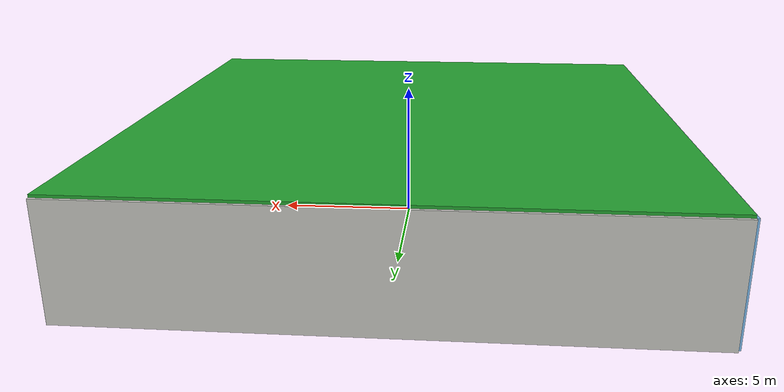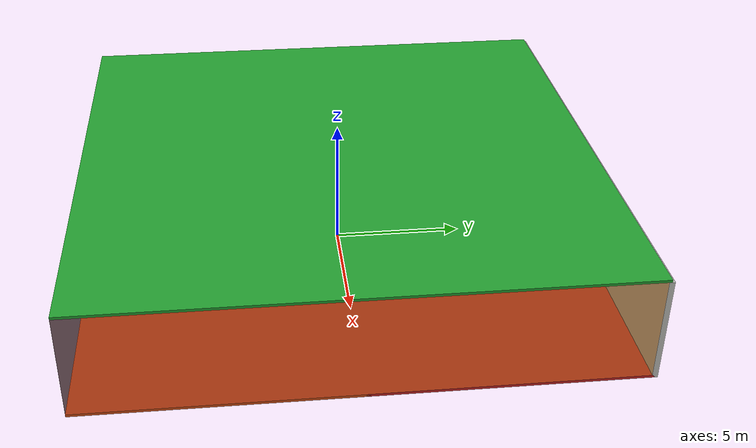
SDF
<sdf version="1.4">
 <world name="default">
  <physics type="ode">
   <max_step_size>0.001</max_step_size>
   <real_time_factor>1</real_time_factor>
   <real_time_update_rate>1000</real_time_update_rate>
   <gravity>0 0 -9.8</gravity>
  </physics>
  <scene><ambient>0.4 0.4 0.4 1</ambient><background>0.7 0.7 0.7 1</background><shadows>1</shadows></scene>
  <model name="Surrounding">
   <static>1</static>
   <link name="Ceiling">
    <collision name="Ceiling_Collision"><geometry><box><size>20 20 0.1</size></box></geometry></collision>
    <visual name="Ceiling_Visual">
     <geometry><box><size>20 20 0.1</size></box></geometry>
     <material>
      <script><uri>file://media/materials/scripts/gazebo.material</uri><name>Gazebo/Green</name></script>
     </material>
    </visual>
    <pose>0 0 4.05 0 0 0</pose>
   </link>
   <link name="Wall_South">
    <collision name="Wall_South_Collision">
     <geometry><box><size>20 0 4</size></box></geometry>
     <pose>0 0 2 0 -0 0</pose>
    </collision>
    <visual name="Wall_South_Visual">
     <pose>0 0 2 0 -0 0</pose>
     <geometry><box><size>20 0 4</size></box></geometry>
     <material>
      <script><uri>file://media/materials/scripts/gazebo.material</uri><name>Gazebo/Blue</name></script>
     </material>
    </visual>
    <velocity_decay><linear>0</linear><angular>0</angular></velocity_decay>
    <pose>0 -10 0 0 -0 0</pose>
   </link>
   <link name="Wall_East">
    <collision name="Wall_21_Collision">
     <geometry><box><size>20 0 4</size></box></geometry>
     <pose>0 0 2 0 -0 0</pose>
    </collision>
    <visual name="Wall_21_Visual">
     <pose>0 0 2 0 -0 0</pose>
     <geometry><box><size>20 0 4</size></box></geometry>
     <material>
      <script>
       <uri>file://media/materials/scripts/gazebo.material</uri>
       <name>Gazebo/OrangeTransparent</name>
      </script>
     </material>
    </visual>
    <velocity_decay><linear>0</linear><angular>0</angular></velocity_decay>
    <pose>10 0 0 0 -0 1.5708</pose>
   </link>
   <link name="Wall_North">
    <collision name="Wall_22_Collision">
     <geometry><box><size>20 0.2 4</size></box></geometry>
     <pose>0 0 2 0 -0 0</pose>
    </collision>
    <visual name="Wall_22_Visual">
     <pose>0 0 2 0 -0 0</pose>
     <geometry><box><size>20 0.2 4</size></box></geometry>
     <material>
      <script><uri>file://media/materials/scripts/gazebo.material</uri><name>Gazebo/CeilingTiled</name></script>
     </material>
    </visual>
    <velocity_decay><linear>0</linear><angular>0</angular></velocity_decay>
    <pose>0 10 0 0 -0 0</pose>
   </link>
   <link name="Wall_West">
    <collision name="Wall_23_Collision">
     <geometry><box><size>20 0.2 4</size></box></geometry>
     <pose>0 0 2 0 -0 0</pose>
    </collision>
    <visual name="Wall_23_Visual">
     <pose>0 0 2 0 -0 0</pose>
     <geometry><box><size>20 0.2 4</size></box></geometry>
     <material>
      <script><uri>file://media/materials/scripts/gazebo.material</uri><name>Gazebo/SkyBlue</name></script>
     </material>
    </visual>
    <velocity_decay><linear>0</linear><angular>0</angular></velocity_decay>
    <pose>-10 0 0 0 0 -1.5708</pose>
   </link>
   <link name="Ground_link">
    <collision name="collision">
     <pose>0 0 .05 0 -0 0</pose>
     <geometry><box><size>20 20 0.1</size></box></geometry>
    </collision>
    <visual name="visual">
     <pose>0 0 .05 0 -0 0</pose>
     <geometry><box><size>20 20 0.1</size></box></geometry>
     <material>
      <script><uri>file://media/materials/scripts/gazebo.material</uri><name>Gazebo/RedGlow</name></script>
     </material>
    </visual>
   </link>
   <static>1</static>
  </model>
  <spherical_coordinates>
   <surface_model>EARTH_WGS84</surface_model>
   <latitude_deg>0</latitude_deg>
   <longitude_deg>0</longitude_deg>
   <elevation>0</elevation>
   <heading_deg>0</heading_deg>
  </spherical_coordinates>
  <light name="lightball_0" type="diffuse">
   <diffuse>0.8 0.8 0.8 1</diffuse>
   <specular>0.2 0.2 0.2 1</specular>
   <attenuation>
    <range>100</range>
    <constant>0.7</constant>
    <linear>0.01</linear>
    <quadratic>0.001</quadratic>
   </attenuation>
   <direction>-0.5 0.1 -0.9</direction>
   <pose>-7.0764256402 -3.20971318174 1.54507175521 0 0 0</pose>
  </light>
  <light name="lightball_1" type="diffuse">
   <diffuse>0.8 0.8 0.8 1</diffuse>
   <specular>0.2 0.2 0.2 1</specular>
   <attenuation>
    <range>100</range>
    <constant>0.7</constant>
    <linear>0.01</linear>
    <quadratic>0.001</quadratic>
   </attenuation>
   <direction>-0.5 0.1 -0.9</direction>
   <pose>-0.202286096713 -2.85831160833 0.688724161555 0 0 0</pose>
  </light>
  <light name="lightball_2" type="diffuse">
   <diffuse>0.8 0.8 0.8 1</diffuse>
   <specular>0.2 0.2 0.2 1</specular>
   <attenuation>
    <range>100</range>
    <constant>0.7</constant>
    <linear>0.01</linear>
    <quadratic>0.001</quadratic>
   </attenuation>
   <direction>-0.5 0.1 -0.9</direction>
   <pose>-9.10182425024 -6.5471592989 2.17706429671 0 0 0</pose>
  </light>
  <light name="lightball_3" type="diffuse">
   <diffuse>0.8 0.8 0.8 1</diffuse>
   <specular>0.2 0.2 0.2 1</specular>
   <attenuation>
    <range>100</range>
    <constant>0.7</constant>
    <linear>0.01</linear>
    <quadratic>0.001</quadratic>
   </attenuation>
   <direction>-0.5 0.1 -0.9</direction>
   <pose>6.88952368048 5.74309942994 2.27389598831 0 0 0</pose>
  </light>
  <light name="lightball_4" type="diffuse">
   <diffuse>0.8 0.8 0.8 1</diffuse>
   <specular>0.2 0.2 0.2 1</specular>
   <attenuation>
    <range>100</range>
    <constant>0.7</constant>
    <linear>0.01</linear>
    <quadratic>0.001</quadratic>
   </attenuation>
   <direction>-0.5 0.1 -0.9</direction>
   <pose>-7.63125715605 1.3417998742 1.22772312103 0 0 0</pose>
  </light>
  <light name="lightball_5" type="diffuse">
   <diffuse>0.8 0.8 0.8 1</diffuse>
   <specular>0.2 0.2 0.2 1</specular>
   <attenuation>
    <range>100</range>
    <constant>0.7</constant>
    <linear>0.01</linear>
    <quadratic>0.001</quadratic>
   </attenuation>
   <direction>-0.5 0.1 -0.9</direction>
   <pose>6.37448903723 -6.7864120363 3.67482735207 0 0 0</pose>
  </light>
  <light name="lightball_6" type="diffuse">
   <diffuse>0.8 0.8 0.8 1</diffuse>
   <specular>0.2 0.2 0.2 1</specular>
   <attenuation>
    <range>100</range>
    <constant>0.7</constant>
    <linear>0.01</linear>
    <quadratic>0.001</quadratic>
   </attenuation>
   <direction>-0.5 0.1 -0.9</direction>
   <pose>4.41541617149 3.5621604788 2.81449942579 0 0 0</pose>
  </light>
  <light name="lightball_7" type="diffuse">
   <diffuse>0.8 0.8 0.8 1</diffuse>
   <specular>0.2 0.2 0.2 1</specular>
   <attenuation>
    <range>100</range>
    <constant>0.7</constant>
    <linear>0.01</linear>
    <quadratic>0.001</quadratic>
   </attenuation>
   <direction>-0.5 0.1 -0.9</direction>
   <pose>4.45707746689 3.03650009451 1.38202571579 0 0 0</pose>
  </light>
  <include><uri>model://cabinet</uri><pose>-6.9875482147 7.79971402423 0 0 0 0.256281233732</pose></include>
  <include><uri>model://cabinet</uri><pose>-4.36396404203 -4.14275864071 0 0 0 2.06792761827</pose></include>
  <include>
   <uri>model://construction_cone</uri>
   <pose>-0.723306996808 -8.01295739687 0 0 0 2.38274960434</pose>
  </include>
  <include><uri>model://cabinet</uri><pose>1.22054530902 4.27870315041 0 0 0 0.756465804375</pose></include>
 </world>
</sdf>

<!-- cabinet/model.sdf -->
<sdf version="1.5">
  <model name="cabinet">
    <static>true</static>
    <link name="cabinet_bottom_plate">
      <inertial>
        <pose>0 0 -1 0 0 0</pose>
        <inertia>
          <ixx>2.050000</ixx>
          <ixy>0</ixy>
          <ixz>0</ixz>
          <iyy>2.050000</iyy>
          <iyz>0</iyz>
          <izz>2.050000</izz>
        </inertia>
        <mass>25.000000</mass>
      </inertial>
      <collision name="cabinet_bottom_plate_geom">
        <pose>0 0 0.010000 0 0 0</pose>
        <geometry>
          <box>
            <size>0.450000 0.450000 0.020000</size>
          </box>
        </geometry>
      </collision>
      <visual name="cabinet_bottom_plate_geom_visual">
        <pose>0 0 0.010000 0 0 0</pose>
        <geometry>
          <box>
            <size>0.450000 0.450000 0.020000</size>
          </box>
        </geometry>
        <material>
          <script>
            <uri>model://media/materials/scripts/gazebo.material</uri>
            <name>Gazebo/Wood</name>
          </script>
        </material>
      </visual>
      <collision name="cabinet_bottom_plate_geom_cabinet_back_plate">
        <pose>0.235000 0 0.510000 0 0 0</pose>
        <geometry>
          <box>
            <size>0.020000 0.450000 1.020000</size>
          </box>
        </geometry>
      </collision>
      <visual name="cabinet_bottom_plate_geom_cabinet_back_plate_visual">
        <pose>0.235000 0 0.510000 0 0 0</pose>
        <geometry>
          <box>
            <size>0.020000 0.450000 1.020000</size>
          </box>
        </geometry>
        <material>
          <script>
            <uri>model://media/materials/scripts/gazebo.material</uri>
            <name>Gazebo/Wood</name>
          </script>
        </material>
      </visual>
      <collision name="cabinet_bottom_plate_geom_cabinet_left_plate">
        <pose>0 0.235000 0.510000 0 0 0</pose>
        <geometry>
          <box>
            <size>0.450000 0.020000 1.020000</size>
          </box>
        </geometry>
      </collision>
      <visual name="cabinet_bottom_plate_geom_cabinet_left_plate_visual">
        <pose>0 0.235000 0.510000 0 0 0</pose>
        <geometry>
          <box>
            <size>0.450000 0.020000 1.020000</size>
          </box>
        </geometry>
        <material>
          <script>
            <uri>model://media/materials/scripts/gazebo.material</uri>
            <name>Gazebo/Wood</name>
          </script>
        </material>
      </visual>
      <collision name="cabinet_bottom_plate_geom_cabinet_middle_plate">
        <pose>0 0 0.510000 0 0 0</pose>
        <geometry>
          <box>
            <size>0.450000 0.450000 0.020000</size>
          </box>
        </geometry>
      </collision>
      <visual name="cabinet_bottom_plate_geom_cabinet_middle_plate_visual">
        <pose>0 0 0.510000 0 0 0</pose>
        <geometry>
          <box>
            <size>0.450000 0.450000 0.020000</size>
          </box>
        </geometry>
        <material>
          <script>
            <uri>model://media/materials/scripts/gazebo.material</uri>
            <name>Gazebo/Wood</name>
          </script>
        </material>
      </visual>
      <collision name="cabinet_bottom_plate_geom_cabinet_right_plate">
        <pose>0 -0.235000 0.510000 0 0 0</pose>
        <geometry>
          <box>
            <size>0.450000 0.020000 1.020000</size>
          </box>
        </geometry>
      </collision>
      <visual name="cabinet_bottom_plate_geom_cabinet_right_plate_visual">
        <pose>0 -0.235000 0.510000 0 0 0</pose>
        <geometry>
          <box>
            <size>0.450000 0.020000 1.020000</size>
          </box>
        </geometry>
        <material>
          <script>
            <uri>model://media/materials/scripts/gazebo.material</uri>
            <name>Gazebo/Wood</name>
          </script>
        </material>
      </visual>
      <collision name="cabinet_bottom_plate_geom_cabinet_top_plate">
        <pose>0 0 1.010000 0 0 0</pose>
        <geometry>
          <box>
            <size>0.450000 0.450000 0.020000</size>
          </box>
        </geometry>
      </collision>
      <visual name="cabinet_bottom_plate_geom_cabinet_top_plate_visual">
        <pose>0 0 1.010000 0 0 0</pose>
        <geometry>
          <box>
            <size>0.450000 0.450000 0.020000</size>
          </box>
        </geometry>
        <material>
          <script>
            <uri>model://media/materials/scripts/gazebo.material</uri>
            <name>Gazebo/Wood</name>
          </script>
        </material>
      </visual>
    </link>
  </model>
</sdf>

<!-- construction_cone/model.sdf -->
<sdf version="1.5">
  <model name="Construction Cone">
    <link name="link">
      <collision name="collision">
        <geometry>
          <mesh>
            <scale>10 10 10</scale>
            <uri>file://isr-testbed/construction_cone/meshes/construction_cone.dae</uri>
          </mesh>
        </geometry>
      </collision>
      <visual name="visual">
        <geometry>
          <mesh>
            <scale>10 10 10</scale>
            <uri>file://isr-testbed/construction_cone/meshes/construction_cone.dae</uri>
          </mesh>
        </geometry>
      </visual>
    </link>
  </model>
</sdf>
